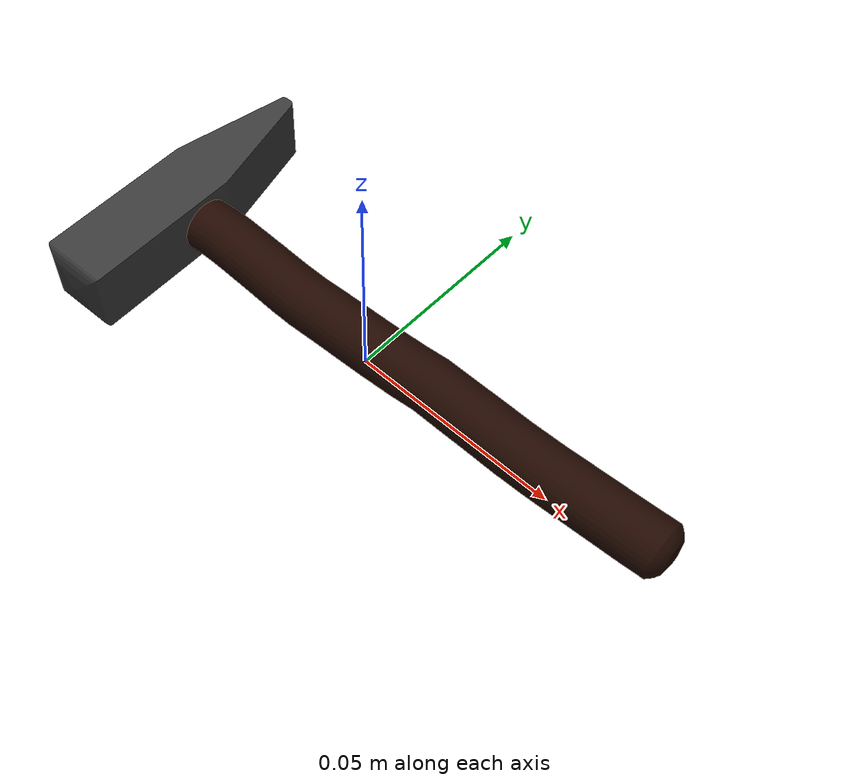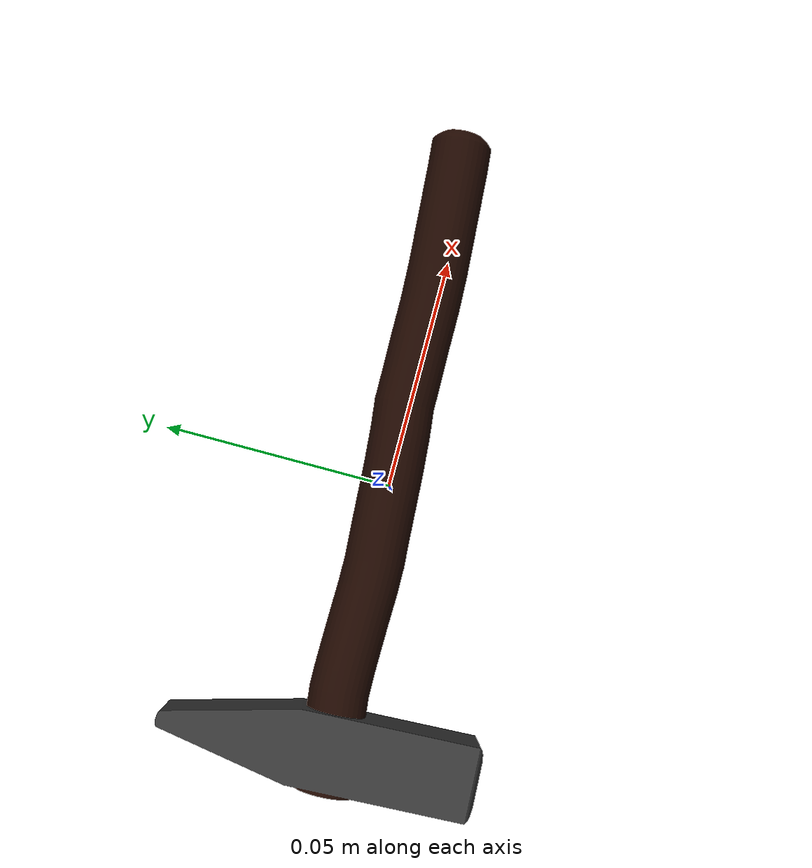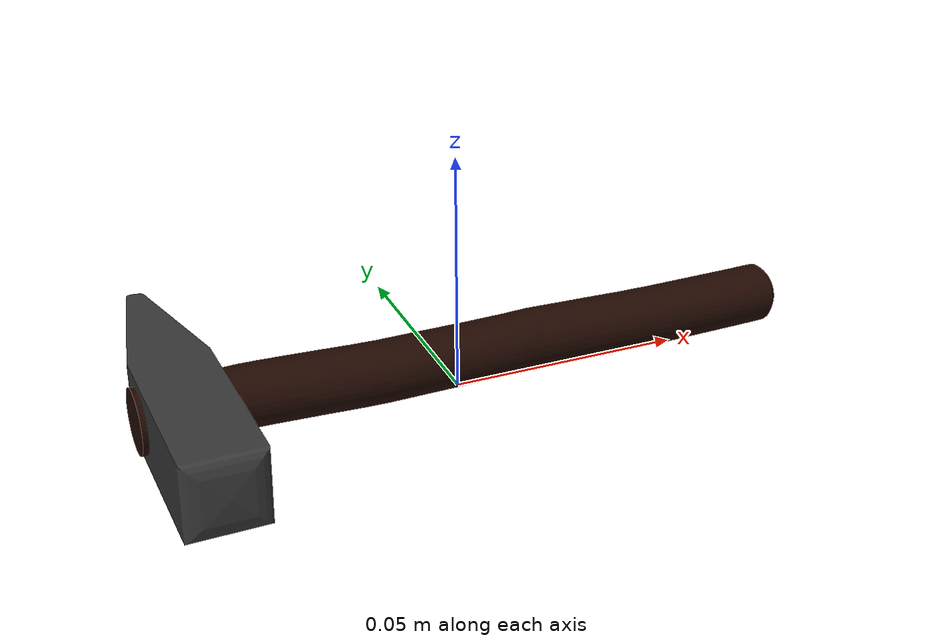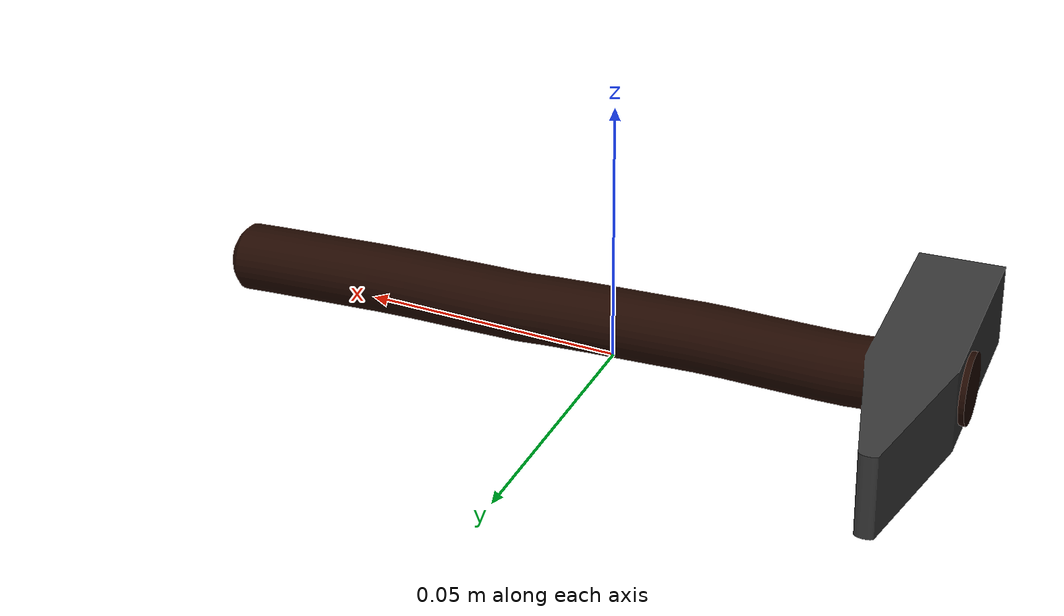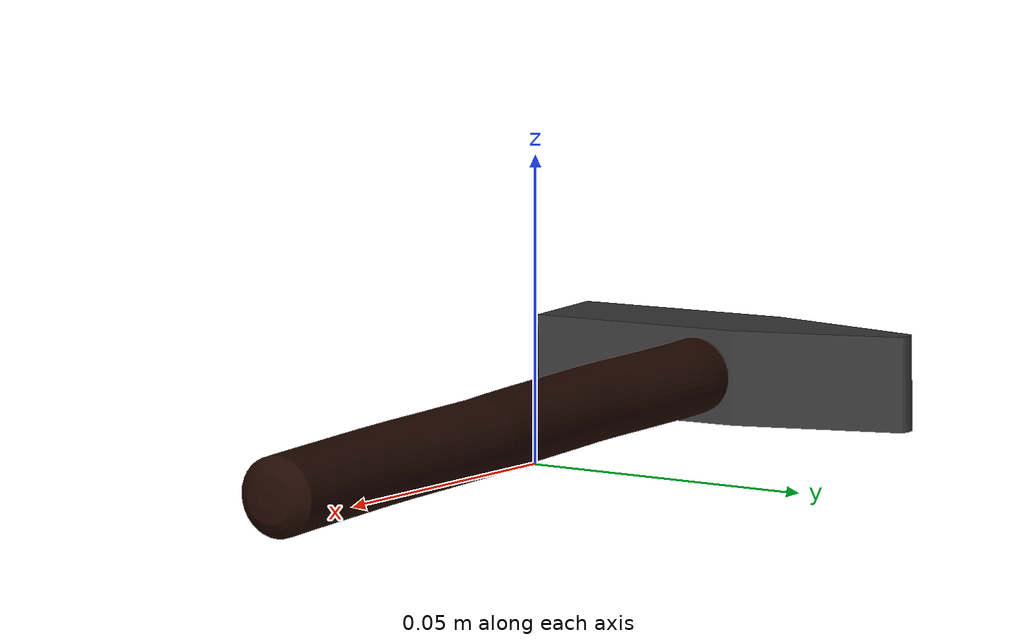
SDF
<?xml version="1.0" ?>
<sdf version="1.5">
  <model name="hammer pein">
    <link name="link">
	<inertial>
	  <mass>0.500</mass>
	   <inertia>
	     <ixx>0.00045417</ixx>
	     <iyy>0.00054170</iyy>
	     <izz>0.00007500</izz>
    	 <ixy>0</ixy>
	     <ixz>0</ixz>
	     <iyz>0</iyz>
	   </inertia>
	</inertial>
	<collision name="body">
	  <geometry>
	    <box>
	      <size> 0.05000 0.010000 0.005000 </size>
	    </box>
	  </geometry>
	</collision>
	<visual name="bodyMesh">
	  <geometry>
	  <mesh>
	    <uri>model://hammer_pein/meshes/hammer_scaled.dae</uri>
  </mesh>
	  </geometry>
	</visual>
    </link>
 </model>
</sdf>
